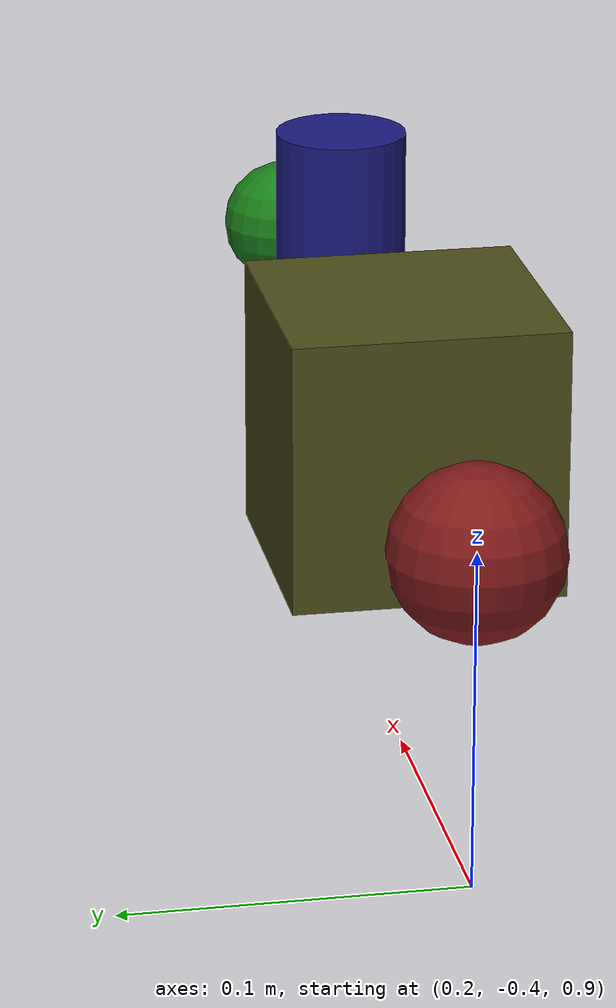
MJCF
<mujoco model="xlerobot objects">

  <asset>
    <material name="obj_red" rgba="0.5 0.1 0.1 1"/>
    <material name="obj_green" rgba="0.1 0.5 0.1 1"/>
    <material name="obj_blue" rgba="0.1 0.1 0.5 1"/>
    <material name="obj_yellow" rgba="0.3 0.3 0.1 1"/>
  </asset>

  <worldbody>
    <!-- Manipulable objects with freejoint for physics simulation -->
    <body name="box1" pos="0.1 -0.4 1">
      <freejoint/>
      <geom type="box" size="0.015 0.02 0.05" material="obj_red" mass="0.1"
            contype="1" conaffinity="1" friction="1.2 0.05 0.01" condim="4" group="3"/>
    </body>

    <body name="sphere1" pos="0.5 -0.4 1">
      <freejoint/>
      <geom type="sphere" size="0.02" material="obj_green" mass="0.04"
            contype="1" conaffinity="1" friction="1.2 0.05 0.01" condim="4"/>
    </body>

    <body name="cylinder1" pos="0.4 -0.4 1">
      <freejoint/>
      <geom type="cylinder" size="0.02 0.06" material="obj_blue" mass="0.04"
            contype="1" conaffinity="1" friction="1.2 0.05 0.01" condim="4"/>
    </body>

    <body name="box2" pos="0.3 -0.4 1">
      <freejoint/>
      <geom type="box" size="0.04 0.04 0.04" material="obj_yellow" mass="0.04"
            contype="1" conaffinity="1" friction="1.2 0.05 0.01" condim="4"/>
    </body>

    <body name="sphere2" pos="0.2 -0.4 1">
      <freejoint/>
      <geom type="sphere" size="0.025" material="obj_red" mass="0.04"
            contype="1" conaffinity="1" friction="1.2 0.05 0.01" condim="4"/>
    </body>
  </worldbody>

</mujoco>
